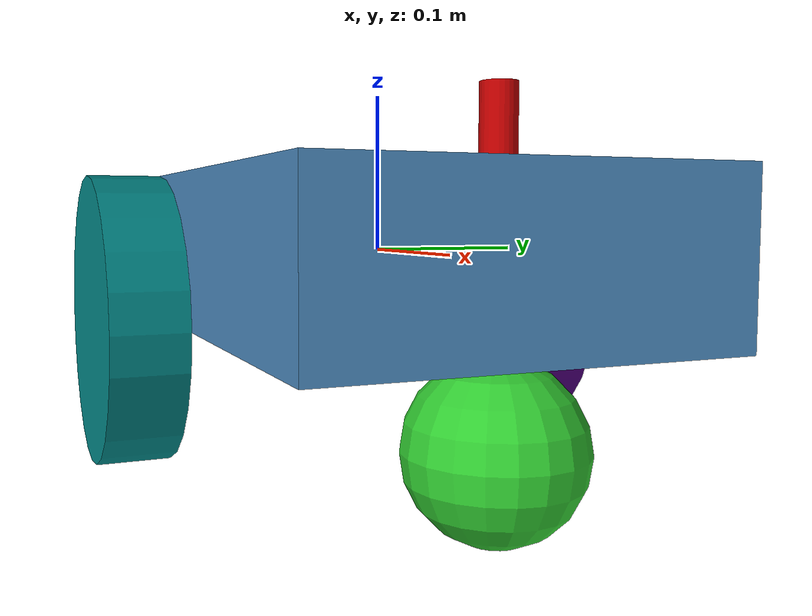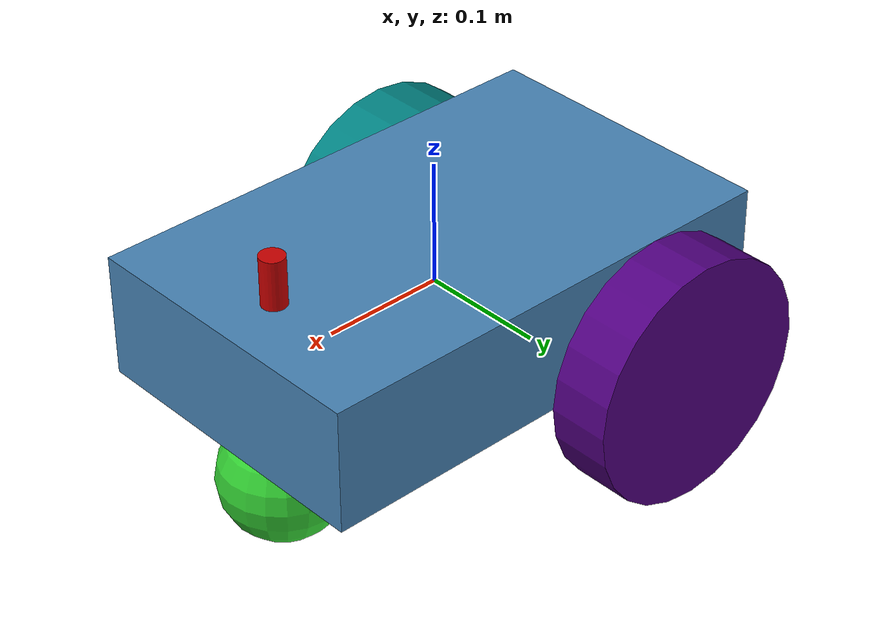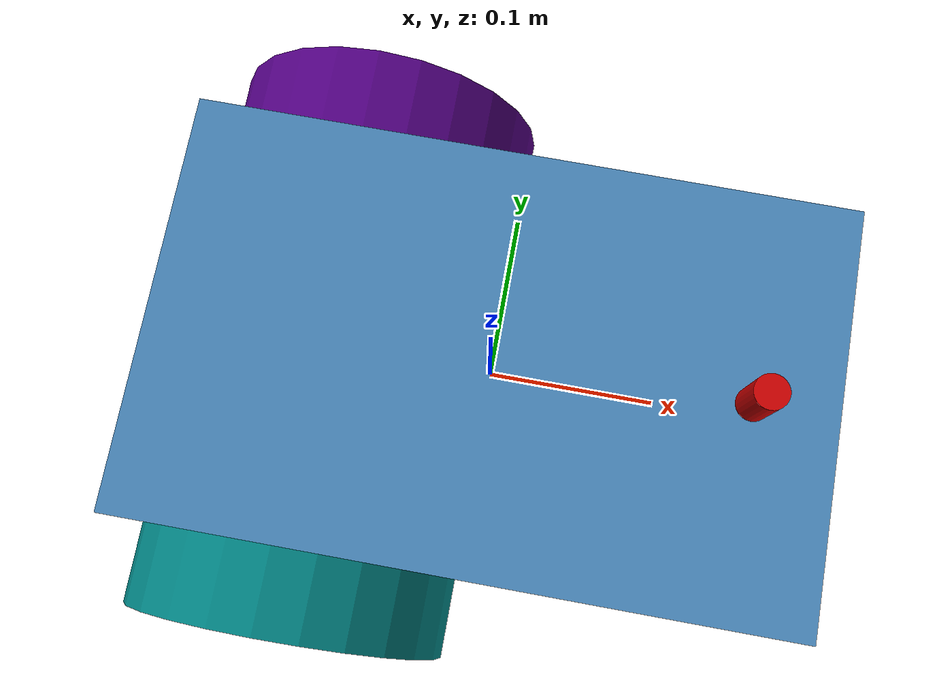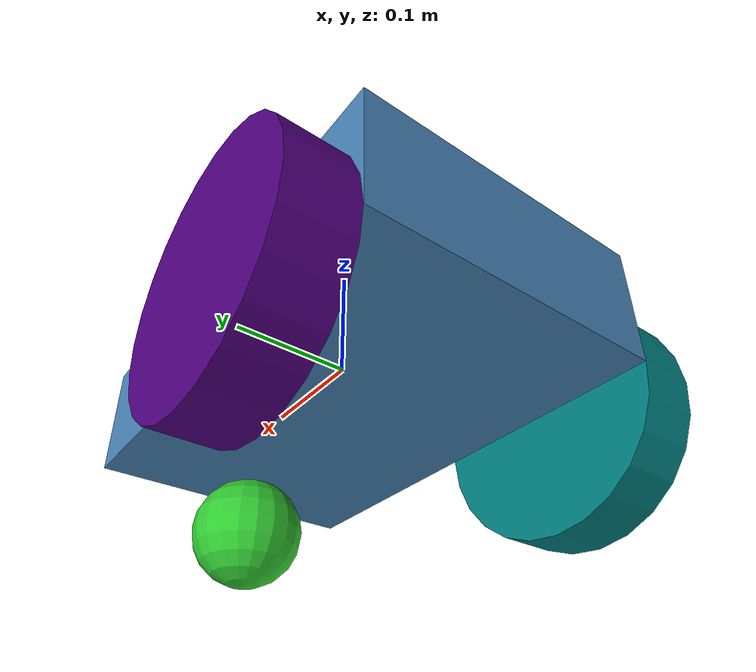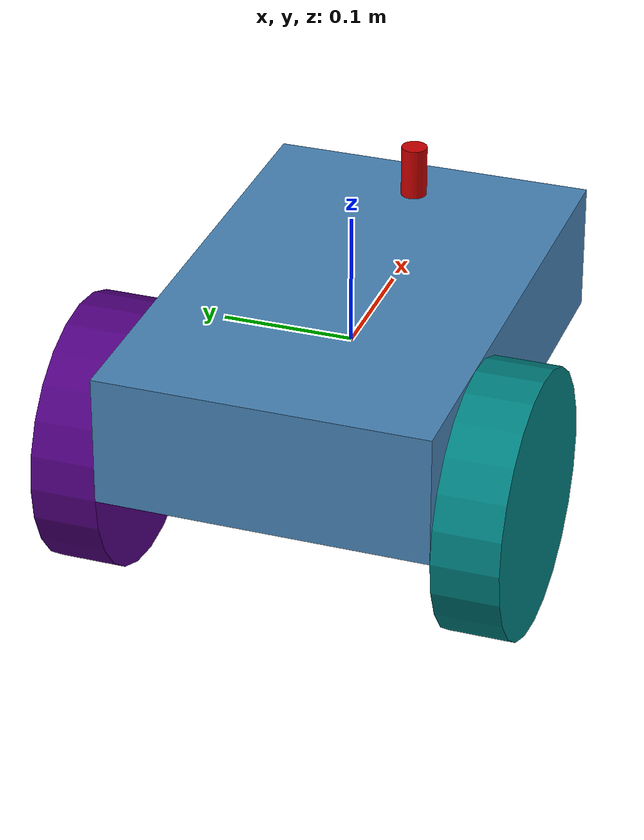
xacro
<?xml version="1.0"?>

<!-- Reference: https://github.com/lucasmazzetto/gazebo_differential_drive_robot -->
<robot name="diff_drive" xmlns:xacro="http://www.ros.org/wiki/xacro">
    <!-- Import diff macro -->
    <xacro:include filename="$(find diff_drive_description)/urdf/diff_drive_macro.urdf.xacro"/>
    <!-- ros2_control description -->
    <xacro:include filename="$(find diff_drive_description)/urdf/diff_drive.ros2_control.xacro"/>

    <!-- Robot Parameters -->
    <xacro:arg name="body_length" default="0.4"/>
    <xacro:arg name="body_width" default="0.25"/>
    <xacro:arg name="body_height" default="0.1"/>
    <xacro:arg name="body_density" default="7850.0"/>
    <xacro:arg name="wheel_radius" default="0.1"/>
    <xacro:arg name="wheel_width" default="0.05"/>
    <xacro:arg name="wheel_density" default="900"/>
    <xacro:arg name="caster_radius" default="0.05"/>
    <xacro:arg name="caster_density" default="0.1"/>
    <xacro:arg name="max_linear_acceleration" default="10"/>
    <xacro:arg name="use_gazebo" default="true"/>
    <xacro:arg name="tf_prefix" default=""/>

    <xacro:property name="body_width" value="$(arg body_width)"/>
    <xacro:property name="wheel_width" value="$(arg wheel_width)"/>
    <xacro:property name="body_length" value="$(arg body_length)"/>
    <xacro:property name="caster_radius" value="$(arg caster_radius)"/>
    <xacro:property name="wheel_separation" value="${(body_width) + (wheel_width)}"/>
    <xacro:property name="caster_offset" value="${(body_length)/2 - (caster_radius)}"/>

    <xacro:diff_drive
        tf_prefix="$(arg tf_prefix)"
        body_length="$(arg body_length)"
        body_width="$(arg body_width)"
        body_height="$(arg body_height)"
        body_density="$(arg body_density)"
        wheel_radius="$(arg wheel_radius)"
        wheel_width="$(arg wheel_width)"
        wheel_density="$(arg wheel_density)"
        caster_radius="$(arg caster_radius)"
        caster_density="$(arg caster_density)"
        max_linear_acceleration="$(arg max_linear_acceleration)"
    />

    <xacro:if value="$(arg use_gazebo)">
        <xacro:include filename="$(find diff_drive_description)/urdf/diff_drive.gazebo.xacro"/>
        <xacro:diff_drive_gazebo
            wheel_separation="${(wheel_separation)}"
            wheel_radius="$(arg wheel_radius)"
            max_linear_acceleration="$(arg max_linear_acceleration)"
            tf_prefix="$(arg tf_prefix)"/>
    </xacro:if>

    <xacro:diff_drive_ros2_control name="diff_drive_ros2_control" tf_prefix="$(arg tf_prefix)" use_gazebo="$(arg use_gazebo)"/>
</robot>

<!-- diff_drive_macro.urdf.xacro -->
<robot xmlns:xacro="http://wiki.ros.org/xacro">
    <!-- import macros -->
    <xacro:include filename="$(find diff_drive_description)/urdf/materials.xacro"/>

    <xacro:macro name="diff_drive" params="
        tf_prefix
        body_length:=0.5
        body_width:=0.3
        body_height:=0.1
        body_density:=7850.0
        wheel_radius:=0.1
        wheel_width:=0.05
        wheel_density:=900
        caster_radius:=0.05
        caster_density:=0.1
        max_linear_acceleration:=10
    ">
        <xacro:property name="PI" value="3.14159265"/>
        <xacro:property name="body_mass" value="${body_density * body_length * body_height * body_width}"/>
        <xacro:property name="body_inertia_x" value="${1.0/12.0 * body_mass * (body_height*body_height + body_width*body_width)}"/>
        <xacro:property name="body_inertia_y" value="${1.0/12.0 * body_mass * (body_length*body_length + body_height*body_height)}"/>
        <xacro:property name="body_inertia_z" value="${1.0/12.0 * body_mass * (body_length*body_length + body_width*body_width)}"/>
        <xacro:property name="wheel_offset" value="${body_length/2 - wheel_radius}"/>
        <xacro:property name="wheel_mass" value="${wheel_density * PI * wheel_radius * wheel_radius * wheel_width}"/>
        <xacro:property name="wheel_inertia_x" value="${1.0/12.0 * wheel_mass * (3*wheel_radius*wheel_radius + wheel_width*wheel_width)}"/>
        <xacro:property name="wheel_inertia_y" value="${1.0/12.0 * wheel_mass * (3*wheel_radius*wheel_radius + wheel_width*wheel_width)}"/>
        <xacro:property name="wheel_inertia_z" value="${1.0/2.0 * wheel_mass * wheel_radius * wheel_radius}"/>
        <xacro:property name="caster_offset" value="${body_length/2 - caster_radius}"/>
        <xacro:property name="caster_mass" value="${caster_density * 4.0/3.0 * PI * caster_radius * caster_radius * caster_radius}"/>
        <xacro:property name="caster_inertia_x" value="${2.0/5.0 * caster_mass * caster_radius * caster_radius}"/>
        <xacro:property name="caster_inertia_y" value="${2.0/5.0 * caster_mass * caster_radius * caster_radius}"/>
        <xacro:property name="caster_inertia_z" value="${2.0/5.0 * caster_mass * caster_radius * caster_radius}"/>

        <!-- Body Link -->

        <link name="${tf_prefix}body_link">
            <visual>
                <origin xyz="0.0 0.0 0.0" rpy="0.0 0.0 0.0"/>
                <geometry>
                    <box size="${body_length} ${body_width} ${body_height}"/>
                </geometry>
                <material name="chasis-material" />
            </visual>
            <collision>
                <origin xyz="0.0 0.0 0.0" rpy="0.0 0.0 0.0"/>
                <geometry>
                    <box size="${body_length} ${body_width} ${body_height}"/>
                </geometry>
            </collision>
            <inertial>
                <mass value="10"/>
                <inertia ixx="${body_inertia_x}" ixy="0.0" ixz="0.0" iyy="${body_inertia_y}" iyz="0" izz="${body_inertia_z}"/>
                <origin xyz="0 0 0" rpy="0 0 0"/>
            </inertial>
        </link>

        <!-- Left Wheel -->
        <link name="${tf_prefix}left_wheel">
            <visual>
                <origin xyz="0.0 0.0 0.0" rpy="1.570795 0.0 0.0"/>
                <geometry>
                    <cylinder radius="${wheel_radius}" length="${wheel_width}"/>
                </geometry>
                <material name="left-wheel-material" />
            </visual>
            <collision>
                <origin xyz="0.0 0.0 0.0" rpy="1.570795 0.0 0.0"/>
                <geometry>
                    <cylinder radius="${wheel_radius}" length="${wheel_width}"/>
                </geometry>
                <surface>
                <friction>
                <ode>
                    <mu>1</mu>
                    <mu2>1</mu2>
                    <slip1>0.035</slip1>
                    <slip2>0</slip2>
                    <fdir1>0 0 1</fdir1>
                </ode>
                <bullet>
                    <friction>1</friction>
                    <friction2>1</friction2>
                    <rolling_friction>0.1</rolling_friction>
                </bullet>
                </friction>
            </surface>
            </collision>
            <inertial>
                <mass value="2"/>
                <inertia ixx="${wheel_inertia_x}" ixy="0.0" ixz="0.0" iyy="${wheel_inertia_y}" iyz="0" izz="${wheel_inertia_z}"/>
                <origin xyz="0.0 0.0 0.0" rpy="1.570795 0.0 0.0"/>
            </inertial>
        </link>

        <!-- Right Wheel -->
        <link name="${tf_prefix}right_wheel">
            <visual>
                <origin xyz="0.0 0.0 0.0" rpy="1.570795 0.0 0.0"/>
                <geometry>
                    <cylinder radius="${wheel_radius}" length="${wheel_width}"/>
                </geometry>
                <material name="right-wheel-material" />
            </visual>
            <collision>
                <origin xyz="0.0 0.0 0.0" rpy="1.570795 0.0 0.0"/>
                <geometry>
                    <cylinder radius="${wheel_radius}" length="${wheel_width}"/>
                </geometry>
                <surface>
                    <friction>
                    <ode>
                        <mu>1</mu>
                        <mu2>1</mu2>
                        <slip1>0.035</slip1>
                        <slip2>0</slip2>
                        <fdir1>0 0 1</fdir1>
                    </ode>
                    <bullet>
                        <friction>1</friction>
                        <friction2>1</friction2>
                        <rolling_friction>0.1</rolling_friction>
                    </bullet>
                    </friction>
                </surface>
            </collision>
            <inertial>
                <mass value="2"/>
                <inertia ixx="${wheel_inertia_x}" ixy="0.0" ixz="0.0" iyy="${wheel_inertia_y}" iyz="0" izz="${wheel_inertia_z}"/>
                <origin xyz="0.0 0.0 0.0" rpy="1.570795 0.0 0.0"/>
            </inertial>
        </link>

        <!-- Caster Wheel -->
        <link name="${tf_prefix}caster">
            <visual>
                <origin xyz="0.0 0.0 0.0" rpy="0.0 0.0 0.0"/>
                <geometry>
                    <sphere radius="${caster_radius}"/>
                </geometry>
                <material name="caster-wheel-material" />
            </visual>
            <collision>
                <origin xyz="0.0 0.0 0.0" rpy="0.0 0.0 0.0"/>
                <geometry>
                    <sphere radius="${caster_radius}"/>
                </geometry>
            </collision>
            <inertial>
                <mass value="0.5"/>
                <inertia ixx="${caster_inertia_x}" ixy="0.0" ixz="0.0" iyy="${caster_inertia_y}" iyz="0" izz="${caster_inertia_z}"/>
                <origin xyz="0 0 0" rpy="0 0 0"/>
            </inertial>
        </link>

        <!-- LIDAR -->
        <link name="${tf_prefix}lidar">
            <inertial>
                <mass value="0.1"/>
                <inertia ixx="0.0000027" ixy="0.0" ixz="0.0" iyy="0.0000027" iyz="0" izz="0.0000027"/>
                <origin xyz="0 0 0" rpy="0 0 0"/>
            </inertial>

            <visual>
                <origin xyz="0.0 0.0 0.0" rpy="0.0 0.0 0.0"/>
                <geometry>
                    <cylinder radius="0.01" length="0.04"/>
                </geometry>
                <material name="lidar-material" />
            </visual>

            <collision>
                <geometry>
                    <cylinder radius="0.01" length="0.04"/>
                </geometry>
            </collision>
        </link>

        <!-- Joints -->
        <!-- Floor Joint -->

        <!-- Left Wheel Joint -->
        <joint name="${tf_prefix}left_wheel_joint" type="continuous">
            <origin xyz="-${wheel_offset} ${wheel_separation/2} -${wheel_radius/2}" rpy="0 0 0"/>
            <parent link="${tf_prefix}body_link"/>
            <child link="${tf_prefix}left_wheel"/>
            <axis xyz="0 1 0"/>
            <limit effort="100" velocity="10.0"/>
            <dynamics damping="0.1" friction="0.1"/>
        </joint>

        <!-- Right Wheel Joint -->
        <joint name="${tf_prefix}right_wheel_joint" type="continuous">
            <origin xyz="-${wheel_offset} ${-wheel_separation/2} -${wheel_radius/2}" rpy="0 0 0"/>
            <parent link="${tf_prefix}body_link"/>
            <child link="${tf_prefix}right_wheel"/>
            <axis xyz="0 1 0"/>
            <limit effort="100" velocity="10.0"/>
            <dynamics damping="0.1" friction="0.1"/>
        </joint>

        <!-- Caster Wheel Joint (fixed) or Ball?!? -->
        <joint name="${tf_prefix}caster_joint" type="fixed">
            <origin xyz="${caster_offset} 0 -${body_height/2+wheel_radius/2}" rpy="0 0 0"/>
            <parent link="${tf_prefix}body_link"/>
            <child link="${tf_prefix}caster"/>
        </joint>

        <!-- Lidar Joint (fixed) -->
        <joint name="${tf_prefix}lidar_joint" type="fixed">
            <origin xyz="${caster_offset} 0 ${body_height/2+0.02}" rpy="0 0 0"/> <!-- Using the same position as the caster wheel but above it! -->
            <parent link="${tf_prefix}body_link"/>
            <child link="${tf_prefix}lidar"/>
        </joint>

    </xacro:macro>

</robot>

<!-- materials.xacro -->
<robot xmlns:xacro="http://ros.org/wiki/xacro">
    <!-- Chasis cool-blue -->
    <material name="chasis-material">
        <color rgba="${70/255} ${130/255} ${180/255} 1.0" />
        <ambient>0.1 0.2 0.3 1</ambient>  <!-- Soft blue under ambient light -->
        <diffuse>0.3 0.5 0.7 1</diffuse>  <!-- Calm, mid-tone blue under direct lighting -->
        <specular>0.2 0.3 0.4 1</specular>  <!-- Slight shine with blue undertones -->
        <emissive>0.0 0.0 0.0 1</emissive>  <!-- No glow -->
    </material>

    <!-- Right Wheel cool-teal -->
    <material name="right-wheel-material">
        <color rgba="${0/255} ${128/255} ${128/255} 1.0" />
        <ambient>0.1 0.3 0.3 1</ambient>  <!-- Muted teal under ambient light -->
        <diffuse>0.0 0.5 0.5 1</diffuse>  <!-- Teal under direct lighting -->
        <specular>0.1 0.3 0.3 1</specular>  <!-- Slight shine with a cool tint -->
        <emissive>0.0 0.0 0.0 1</emissive>  <!-- No glow -->
    </material>

    <!-- Left Wheel deep-purple -->
    <material name="left-wheel-material">
        <color rgba="${80/255} ${0/255} ${128/255} 1.0" />
        <ambient>0.2 0.0 0.2 1</ambient>  <!-- Soft deep purple under ambient light -->
        <diffuse>0.5 0.0 0.6 1</diffuse>  <!-- Deep purple under direct lighting -->
        <specular>0.3 0.0 0.4 1</specular>  <!-- Glossy with purple tint -->
        <emissive>0.0 0.0 0.0 1</emissive>  <!-- No glow -->
    </material>

    <!-- Caster Wheel cool-green -->
    <material name="caster-wheel-material">
        <color rgba="${50/255} ${205/255} ${50/255} 1.0" />
        <ambient>0.1 0.3 0.1 1</ambient>  <!-- Muted lime green under ambient light -->
        <diffuse>0.2 0.8 0.2 1</diffuse>  <!-- Bright green under direct lighting -->
        <specular>0.2 0.4 0.2 1</specular>  <!-- Slight shine with a green tint -->
        <emissive>0.0 0.0 0.0 1</emissive>  <!-- No glow -->
    </material>

    <!-- LIDAR laser-red -->
    <material name="lidar-material">
        <color rgba="${200/255} ${0/255} ${0/255} 1.0" />
        <ambient>0.2 0.0 0.0 1</ambient>  <!-- Dim red under ambient light -->
        <diffuse>1.0 0.0 0.0 1</diffuse>  <!-- Bright red under direct lighting -->
        <specular>0.3 0.0 0.0 1</specular>  <!-- Glossy red -->
        <emissive>0.3 0.0 0.0 1</emissive>  <!-- Glowing red (representing laser-like effect) -->
    </material>
</robot>
